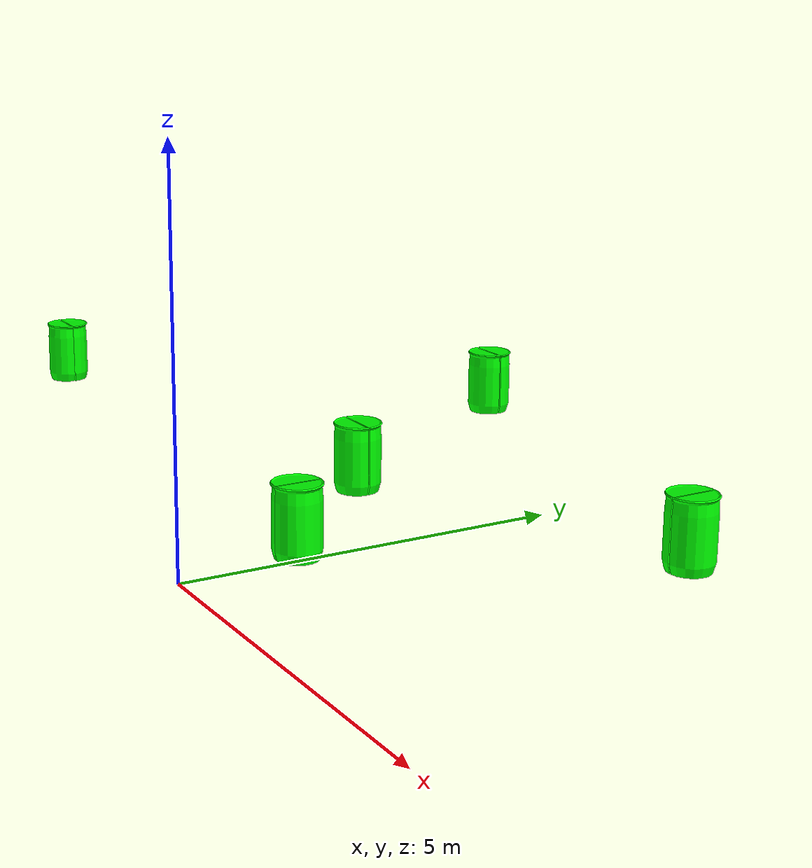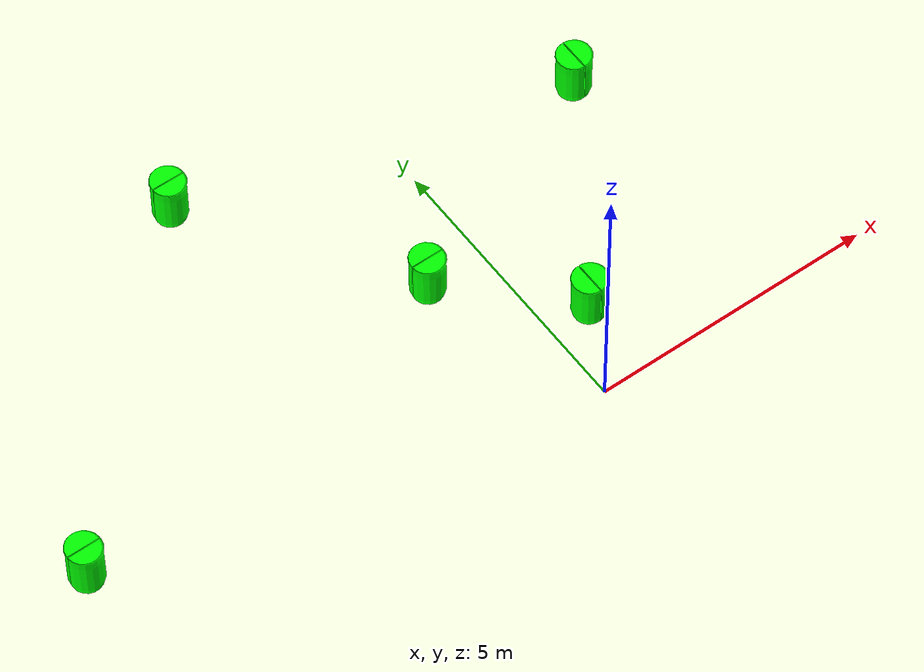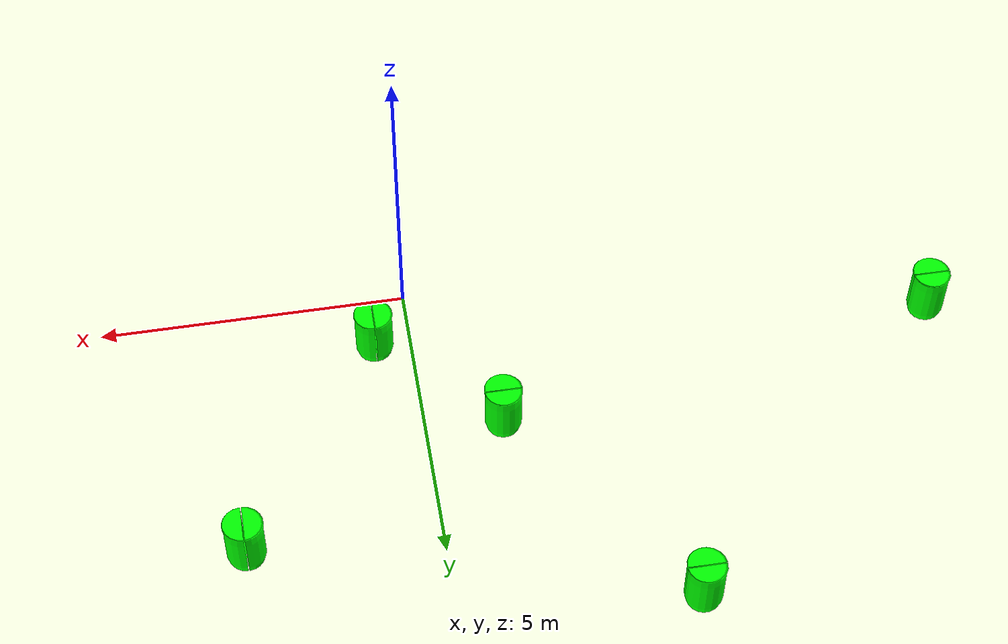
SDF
<sdf version="1.4">
 <world name="default">
  <scene><ambient>0.5 0.5 0.5 1</ambient><background>0.5 0.5 0.5 1</background><shadows>false</shadows></scene>
  <physics type="ode">
   <gravity>0 0 -9.81</gravity>
   <ode>
    <solver><type>quick</type><iters>10</iters><sor>1.3</sor></solver>
    <constraints>
     <cfm>0.0</cfm>
     <erp>0.2</erp>
     <contact_max_correcting_vel>100.0</contact_max_correcting_vel>
     <contact_surface_layer>0.001</contact_surface_layer>
    </constraints>
   </ode>
   <real_time_update_rate>1000</real_time_update_rate>
   <max_step_size>0.001</max_step_size>
  </physics>
  <light type="directional" name="directional_light_1">
   <cast_shadows>false</cast_shadows>
   <pose>0 0 30 0.1 0.1 0</pose>
   <diffuse>1.0 1.0 1.0 1</diffuse>
   <specular>.1 .1 .1 1</specular>
   <attenuation><range>300</range></attenuation>
   <direction>0.1 0.1 -1</direction>
  </light>
  <model name="red_barrel_1">
   <static>true</static>
   <link name="red_barrel_1_link">
    <pose>0 1.2 0 0 0 -1.5708</pose>
    <collision name="red_barrel_1_collision">
     <geometry><mesh><uri>file://red_barrel.dae</uri><scale>1 1 1</scale></mesh></geometry>
    </collision>
    <visual name="red_barrel_1_visual">
     <cast_shadows>false</cast_shadows>
     <geometry><mesh><uri>file://red_barrel.dae</uri><scale>1 1 1</scale></mesh></geometry>
    </visual>
   </link>
  </model>
  <model name="red_barrel_2">
   <static>true</static>
   <link name="red_barrel_2_link">
    <pose>1.2 1.2 0 0 0 -4.71239</pose>
    <collision name="red_barrel_2_collision">
     <geometry><mesh><uri>file://red_barrel.dae</uri><scale>1 1 1</scale></mesh></geometry>
    </collision>
    <visual name="red_barrel_2_visual">
     <cast_shadows>false</cast_shadows>
     <geometry><mesh><uri>file://red_barrel.dae</uri><scale>1 1 1</scale></mesh></geometry>
    </visual>
   </link>
  </model>
  <model name="red_barrel_3">
   <static>true</static>
   <link name="red_barrel_3_link">
    <pose>3.6 4.8 0 0 0 -4.71239</pose>
    <collision name="red_barrel_3_collision">
     <geometry><mesh><uri>file://red_barrel.dae</uri><scale>1 1 1</scale></mesh></geometry>
    </collision>
    <visual name="red_barrel_3_visual">
     <cast_shadows>false</cast_shadows>
     <geometry><mesh><uri>file://red_barrel.dae</uri><scale>1 1 1</scale></mesh></geometry>
    </visual>
   </link>
  </model>
  <model name="red_barrel_4">
   <static>true</static>
   <link name="red_barrel_4_link">
    <pose>2.4 4.8 0 0 0 -1.5708</pose>
    <collision name="red_barrel_4_collision">
     <geometry><mesh><uri>file://red_barrel.dae</uri><scale>1 1 1</scale></mesh></geometry>
    </collision>
    <visual name="red_barrel_4_visual">
     <cast_shadows>false</cast_shadows>
     <geometry><mesh><uri>file://red_barrel.dae</uri><scale>1 1 1</scale></mesh></geometry>
    </visual>
   </link>
  </model>
  <model name="red_barrel_5">
   <static>true</static>
   <link name="red_barrel_5_link">
    <pose>-3.6 6 0 0 0 0</pose>
    <collision name="red_barrel_5_collision">
     <geometry><mesh><uri>file://red_barrel.dae</uri><scale>1 1 1</scale></mesh></geometry>
    </collision>
    <visual name="red_barrel_5_visual">
     <cast_shadows>false</cast_shadows>
     <geometry><mesh><uri>file://red_barrel.dae</uri><scale>1 1 1</scale></mesh></geometry>
    </visual>
   </link>
  </model>
  <model name="red_barrel_6">
   <static>true</static>
   <link name="red_barrel_6_link">
    <pose>-3.6 7.2 0 0 0 -3.14159</pose>
    <collision name="red_barrel_6_collision">
     <geometry><mesh><uri>file://red_barrel.dae</uri><scale>1 1 1</scale></mesh></geometry>
    </collision>
    <visual name="red_barrel_6_visual">
     <cast_shadows>false</cast_shadows>
     <geometry><mesh><uri>file://red_barrel.dae</uri><scale>1 1 1</scale></mesh></geometry>
    </visual>
   </link>
  </model>
  <model name="red_barrel_7">
   <static>true</static>
   <link name="red_barrel_7_link">
    <pose>-1.2 2.4 0 0 0 0</pose>
    <collision name="red_barrel_7_collision">
     <geometry><mesh><uri>file://red_barrel.dae</uri><scale>1 1 1</scale></mesh></geometry>
    </collision>
    <visual name="red_barrel_7_visual">
     <cast_shadows>false</cast_shadows>
     <geometry><mesh><uri>file://red_barrel.dae</uri><scale>1 1 1</scale></mesh></geometry>
    </visual>
   </link>
  </model>
  <model name="red_barrel_8">
   <static>true</static>
   <link name="red_barrel_8_link">
    <pose>-1.2 3.6 0 0 0 -3.14159</pose>
    <collision name="red_barrel_8_collision">
     <geometry><mesh><uri>file://red_barrel.dae</uri><scale>1 1 1</scale></mesh></geometry>
    </collision>
    <visual name="red_barrel_8_visual">
     <cast_shadows>false</cast_shadows>
     <geometry><mesh><uri>file://red_barrel.dae</uri><scale>1 1 1</scale></mesh></geometry>
    </visual>
   </link>
  </model>
  <model name="red_barrel_9">
   <static>true</static>
   <link name="red_barrel_9_link">
    <pose>-8.4 1.2 0 0 0 0</pose>
    <collision name="red_barrel_9_collision">
     <geometry><mesh><uri>file://red_barrel.dae</uri><scale>1 1 1</scale></mesh></geometry>
    </collision>
    <visual name="red_barrel_9_visual">
     <cast_shadows>false</cast_shadows>
     <geometry><mesh><uri>file://red_barrel.dae</uri><scale>1 1 1</scale></mesh></geometry>
    </visual>
   </link>
  </model>
  <model name="red_barrel_10">
   <static>true</static>
   <link name="red_barrel_10_link">
    <pose>-8.4 2.4 0 0 0 -3.14159</pose>
    <collision name="red_barrel_10_collision">
     <geometry><mesh><uri>file://red_barrel.dae</uri><scale>1 1 1</scale></mesh></geometry>
    </collision>
    <visual name="red_barrel_10_visual">
     <cast_shadows>false</cast_shadows>
     <geometry><mesh><uri>file://red_barrel.dae</uri><scale>1 1 1</scale></mesh></geometry>
    </visual>
   </link>
  </model>
 </world>
</sdf>
